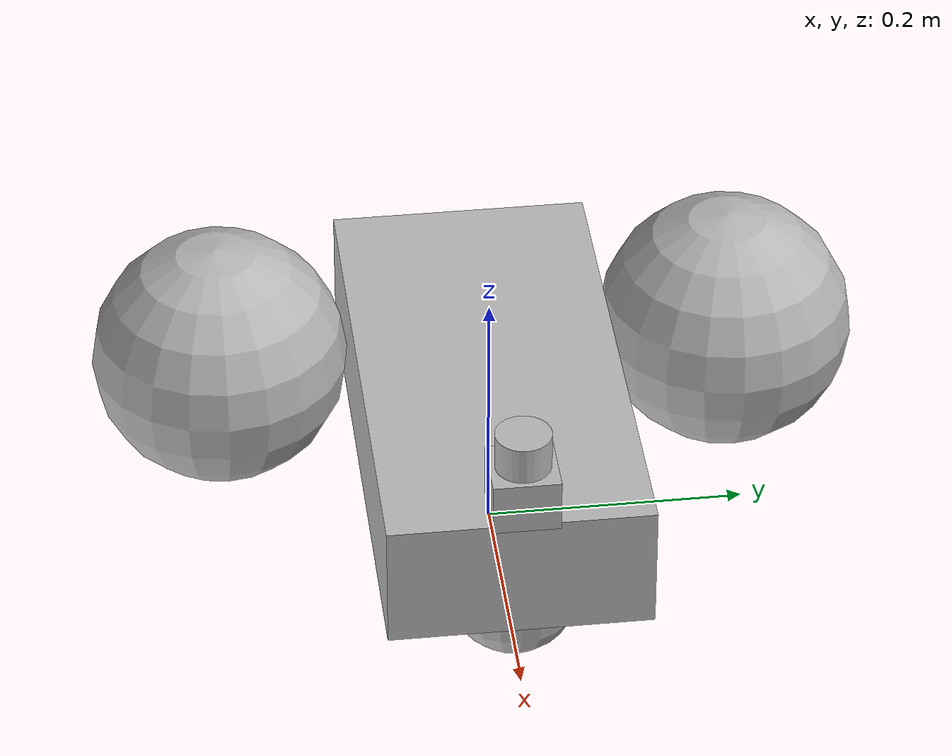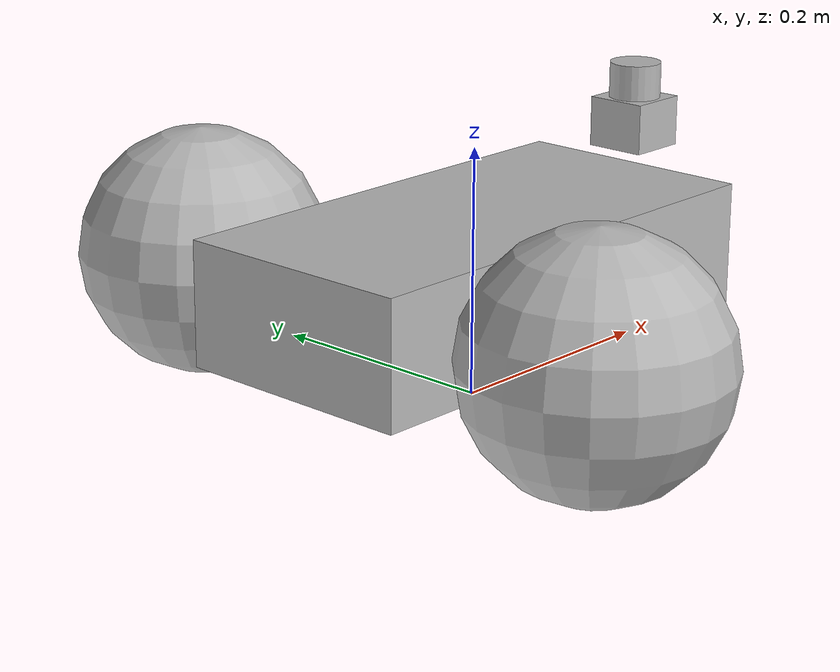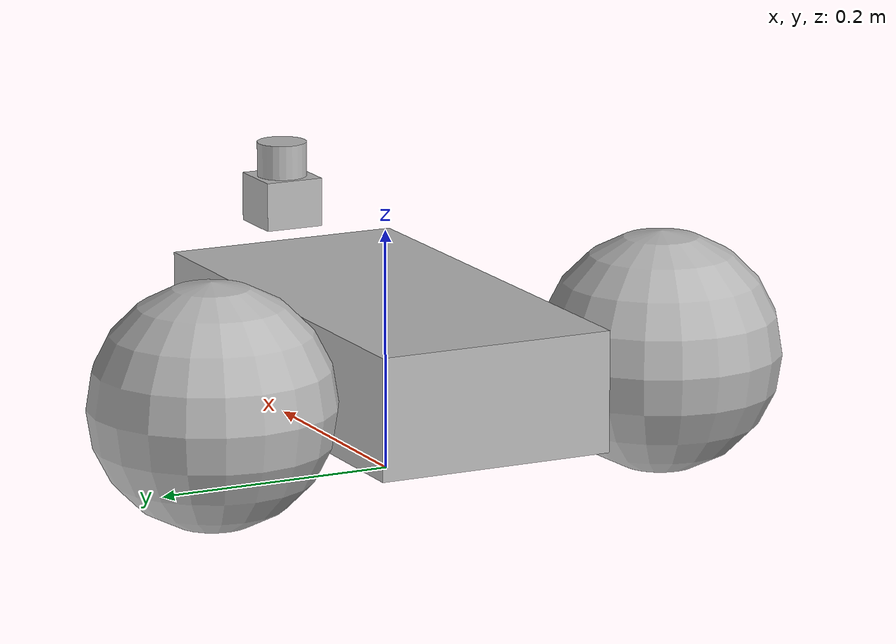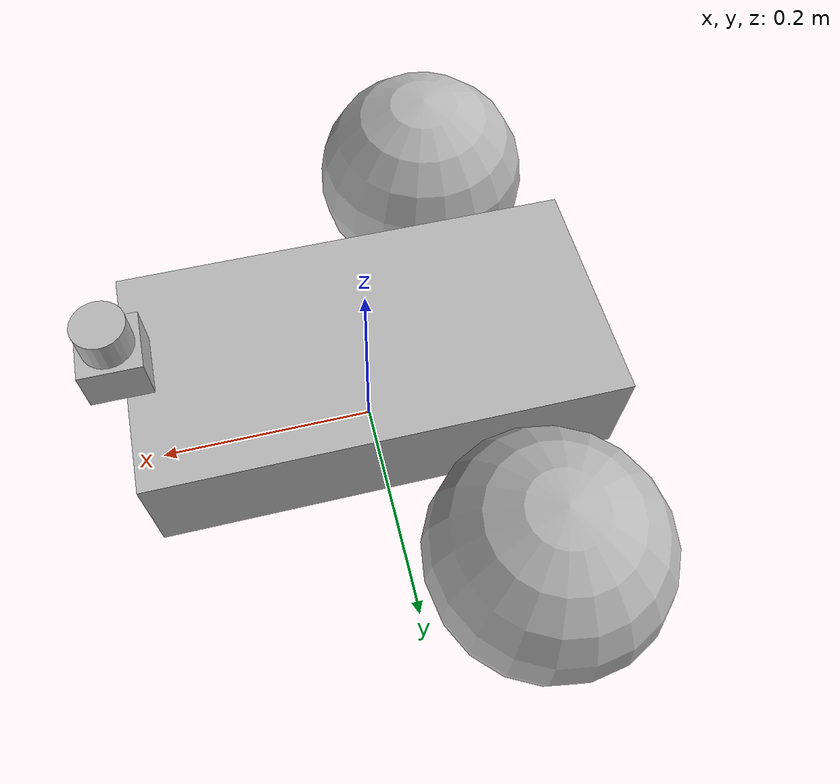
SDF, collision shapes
<?xml version='1.0'?>
<sdf version='1.5'>
  <model name="qt_pi_laser">
    <link name='chassis'>

      <pose>0 0 0.1 0 0 0</pose>

      <inertial>
         <mass>20</mass>
         <pose>0.10 0 -0.05 0 0 0</pose>
      </inertial>

      <collision name='collision'>
        <geometry>
          <box>
            <size>.4 .2 .1</size>
          </box>
        </geometry>
      </collision>

      <visual name='visual'>
        <geometry>
          <box>
            <size>.4 .2 .1</size>
          </box>
        </geometry>
      </visual>

      <collision name='caster_collision'>
        <pose>0.15 0 -0.05 0 0 0</pose>
        <geometry>
          <sphere>
            <radius>.05</radius>
          </sphere>
        </geometry>

      <surface>
      <bounce>
        <restitution_coefficient>0.0</restitution_coefficient>
        <threshold>0.01</threshold>
      </bounce>
      <contact>
        <ode>
          <max_vel>0</max_vel>
          <min_depth>0.001</min_depth>
        </ode>
      </contact>
          <friction>
            <ode>
              <mu>0</mu>
              <mu2>0</mu2>
              <slip1>1.0</slip1>
              <slip2>1.0</slip2>
            </ode>
          </friction>
        </surface>
      </collision>

      <visual name='caster_visual'>
        <pose>0.15 0 -0.05 0 0 0</pose>
        <geometry>
          <sphere>
            <radius>.05</radius>
          </sphere>
        </geometry>
      </visual>
    </link>

    <link name="left_wheel">
      <pose>-0.1 0.2 0.1 0 0 0</pose>
              <inertial>
            <mass>5</mass>
        </inertial>
      <collision name="collision">
      <surface>
       <friction>
        <ode>
          <mu>10</mu>
          <mu2>10</mu2>
        </ode>
      </friction>
      <bounce>
        <restitution_coefficient>0.0</restitution_coefficient>
        <threshold>0.01</threshold>
      </bounce>
      <contact>
        <ode>
          <max_vel>0</max_vel>
          <min_depth>0.001</min_depth>
        </ode>
      </contact>
    </surface>
        <geometry>
    <sphere>
            <radius>.1</radius>
          </sphere>
        </geometry>
      </collision>
      <visual name="visual">
        <geometry>
<sphere>
            <radius>.1</radius>
          </sphere>
        </geometry>
      </visual>
    </link>

    <link name="right_wheel">
      <pose>-0.1 -0.2 0.1 0 0 0</pose>
              <inertial>
            <mass>5</mass>
        </inertial>
      <collision name="collision">

      <surface>
       <friction>
        <ode>
          <mu>10</mu>
          <mu2>10</mu2>
        </ode>
      </friction>
      <bounce>
        <restitution_coefficient>0.0</restitution_coefficient>
        <threshold>0.01</threshold>
      </bounce>
      <contact>
        <ode>
          <max_vel>0</max_vel>
          <min_depth>0.001</min_depth>
        </ode>
      </contact>
    </surface>

        <geometry>
        <sphere>
            <radius>.1</radius>
          </sphere>
        </geometry>
      </collision>
      <visual name="visual">
        <geometry>
          <sphere>
            <radius>.1</radius>
          </sphere>
        </geometry>
      </visual>
    </link>
    <joint type="revolute" name="left_wheel_hinge">
      <pose>0 0 0 0 0 0</pose>
      <child>left_wheel</child>
      <parent>chassis</parent>
      <axis>
        <xyz>0 1 0</xyz>
      </axis>
    </joint>

    <joint type="revolute" name="right_wheel_hinge">
      <pose>0 0 0 0 0 0</pose>
      <child>right_wheel</child>
      <parent>chassis</parent>
      <axis>
        <xyz>0 1 0</xyz>
      </axis>
    </joint>

    <include>
      <uri>model://hokuyo</uri>
      <pose>0.2 0 0.2 0 0 0</pose>
    </include>

    <joint name="hokuyo_joint" type="fixed">
      <child>hokuyo::link</child>
      <parent>chassis</parent>
    </joint>

   <plugin name="differential_drive_controller" filename="libgazebo_ros_diff_drive.so">
      <alwaysOn>true</alwaysOn>
      <updateRate>30</updateRate>
      <leftJoint>left_wheel_hinge</leftJoint>
      <robotNamespace>qt_pi</robotNamespace>
      <rightJoint>right_wheel_hinge</rightJoint>
      <wheelSeparation>0.4</wheelSeparation>
      <wheelDiameter>0.2</wheelDiameter>
      <publishWheelTF>0</publishWheelTF>
      <wheelTorque>5</wheelTorque>
      <commandTopic>cmd_vel</commandTopic>
      <odometryTopic>odom</odometryTopic>
      <robotBaseFrame>base_link</robotBaseFrame>
      <odometryFrame>odom</odometryFrame>
      <publishTf>1</publishTf>
      <publishOdomTF>true</publishOdomTF>
      <rosDebugLevel>1</rosDebugLevel>
      <publishWheelJointState>false</publishWheelJointState>
      <wheelAcceleration>0</wheelAcceleration>
    </plugin>
  </model>
</sdf>

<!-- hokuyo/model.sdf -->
<sdf version="1.5">
  <model name="hokuyo">
    <pose>0 0 0.035 0 0 0</pose>
    <link name="link">
      <inertial>
        <mass>0.1</mass>
      </inertial>
      <visual name="visual">
        <geometry>
          <mesh>
            <uri>model://hokuyo/meshes/hokuyo.dae</uri>
          </mesh>
        </geometry>
      </visual>
      <collision name="collision-base">
        <pose>0 0 -0.0145 0 0 0</pose>
        <geometry>
          <box>
            <size>0.05 0.05 0.041</size>
          </box>
        </geometry>
      </collision>
      <collision name="collision-top">
        <pose>0 0 0.0205 0 0 0</pose>
        <geometry>
          <cylinder>
            <radius>0.021</radius>
            <length>0.029</length>
          </cylinder>
        </geometry>
      </collision>
      <sensor name="laser" type="ray">
        <pose>0.01 0 0.0175 0 -0 0</pose>
        <ray>
          <scan>
            <horizontal>
              <samples>640</samples>
              <resolution>1</resolution>
              <min_angle>-2.26889</min_angle>
              <max_angle>2.268899</max_angle>
            </horizontal>
          </scan>
          <range>
            <min>0.08</min>
            <max>10</max>
            <resolution>0.01</resolution>
          </range>
        </ray>
        <plugin name="laser" filename="libgazebo_ros_laser.so">
            <topicName>scan</topicName>
            <frameName>laser</frameName>
            <always_on>1</always_on>
            <robotNamespace>qt_pi</robotNamespace>
            <update_rate>15</update_rate>
        </plugin>
        <update_rate>15</update_rate>
        <visualize>true</visualize>
      </sensor>
    </link>
  </model>
</sdf>
